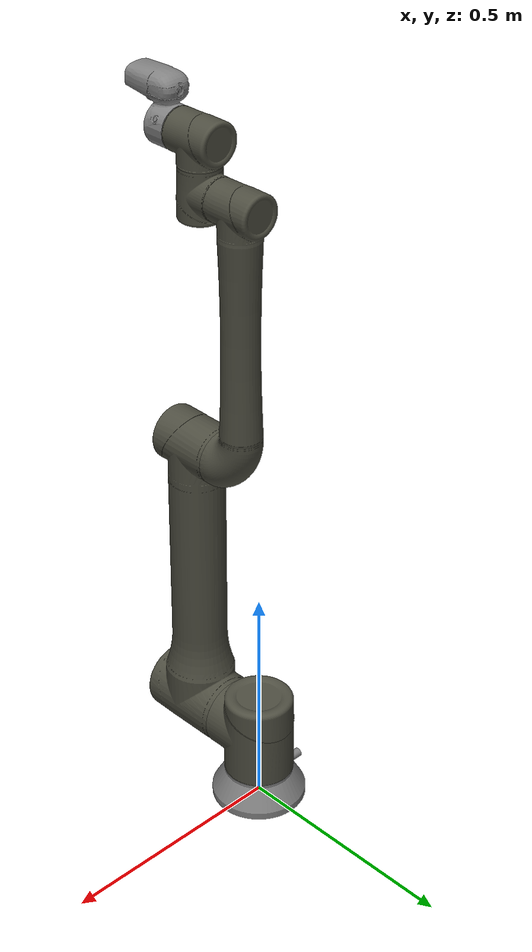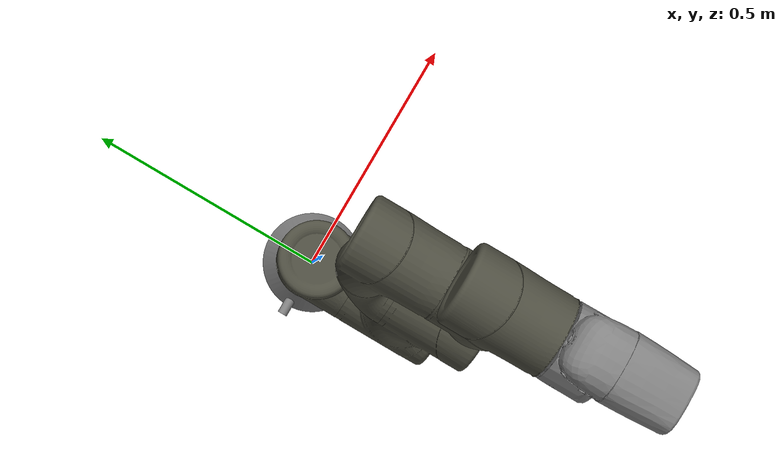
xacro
<?xml version="1.0"?>
<robot name="tm1300" xmlns:xacro="http://www.ros.org/wiki/xacro">

  <xacro:property name="prefix" value="" />

  <!-- gazebo stuff -->
  <xacro:include filename="$(find tm_description)/urdf/common.gazebo.xacro" />
  <xacro:include filename="$(find tm_description)/urdf/tm.gazebo.xacro" />
  <xacro:tm_arm_gazebo prefix="${prefix}" />

  <!-- tm1300 -->
  <xacro:include filename="$(find tm_description)/urdf/tm1300.urdf.xacro" />
  <xacro:tm1300_robot prefix="${prefix}" joint_limited="false" />

  <link name="world" />
  <joint name="world_joint" type="fixed">
    <parent link="world" />
    <child link="base" />
    <origin xyz="0 0 0" rpy="0 0 0" />
  </joint>

  <!-- eye in hand camera-->
  <xacro:include filename="$(find tm_description)/urdf/tm1300.eih.xacro" />
  <xacro:tm1300_eih_camera prefix="${prefix}" />

</robot>

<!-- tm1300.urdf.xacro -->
<robot xmlns:xacro="http://www.ros.org/wiki/xacro">

  <xacro:include filename="$(find tm_description)/urdf/tm.transmission.xacro" />

  <property name="pi" value="3.14159265" />

  <!-- Mass parameters-->
  <property name="base_mass" value="1.0" />
  <property name="shoulder_mass" value="4.5" />
  <property name="arm_1_mass" value="11.0" />
  <property name="arm_2_mass" value="2.5" />
  <property name="wrist_1_mass" value="1.45" />
  <property name="wrist_2_mass" value="1.45" />
  <property name="wrist_3_mass" value="0.4" />

  <!-- Kinematic model -->
  <!-- Properties from tmcontrol.conf -->
  <property name="tm_d1" value="0.1652" />
  <property name="tm_a2" value="0.6361" />
  <property name="tm_a3" value="0.5579" />
  <property name="tm_d4" value="0.1563" />
  <property name="tm_d5" value="0.1060" />
  <property name="tm_d6" value="0.11315" />

  <!-- offsets for shoulder/elbow joints -->
  <property name="shoulder_offset" value="-0.1801" />  <!-- measured from model -->
  <property name="elbow_offset" value="0.1298" /> <!-- measured from model -->
  <property name="wrist_offset" value="${-tm_d4 - elbow_offset - shoulder_offset}" />

  <!-- link lengths used in model -->
  <property name="shoulder_height" value="${tm_d1}" />
  <property name="arm_1_length" value="${tm_a2}" />
  <property name="arm_2_length" value="${tm_a3}" />
  <property name="wrist_1_length" value="tm_d5}" />
  <property name="wrist_2_length" value="${tm_d5}" />
  <property name="wrist_3_length" value="0.05525" />
  <property name="ee_length" value="${tm_d6 - wrist_3_length}" />

  <xacro:macro name="cylinder_inertial" params="radius length mass *origin">
    <inertial>
      <mass value="${mass}" />
      <insert_block name="origin" />
      <inertia ixx="${0.0833333 * mass * (3 * radius * radius + length * length)}" ixy="0.0" ixz="0.0"
        iyy="${0.0833333 * mass * (3 * radius * radius + length * length)}" iyz="0.0"
        izz="${0.5 * mass * radius * radius}" />
    </inertial>
  </xacro:macro>

  <xacro:macro name="tm1300_robot" params="prefix joint_limited">

    <!-- transmission prefix -->
    <xacro:tm_arm_transmission prefix="${prefix}" />

    <link name="${prefix}base_link" >
      <visual>
        <geometry>
	  <mesh filename="package://tm_description/meshes/tm1300/visual/Base.dae" />
        </geometry>
        <material name="Grey">
          <color rgba="0.5 0.5 0.5 1.0"/>
        </material>
      </visual>
      <collision>
        <geometry>
	  <mesh filename="package://tm_description/meshes/tm1300/collision/base.STL" />
        </geometry>
      </collision>

      <xacro:cylinder_inertial radius="0.06" length="0.05" mass="${base_mass}">
        <origin xyz="0.0 0.0 0.0" rpy="0 0 0" />
      </xacro:cylinder_inertial>

    </link>

    <link name="${prefix}shoulder_1_link">
      <visual>
        <geometry>
	  <mesh filename="package://tm_description/meshes/tm1300/visual/Shoulder1.dae" />
        </geometry>
        <material name="DarkOlive">
          <color rgba="0.3 0.3 0.25 1.0"/>
        </material>
      </visual>
      <collision>
        <geometry>
	  <mesh filename="package://tm_description/meshes/tm1300/collision/shoulder_1.STL" />
        </geometry>
      </collision>

      <xacro:cylinder_inertial radius="0.06" length="0.15" mass="${shoulder_mass}">
        <origin xyz="0.0 0.0 0.0" rpy="0 0 0" />
      </xacro:cylinder_inertial>

    </link>

    <joint name="${prefix}shoulder_1_joint" type="revolute">
      <parent link="${prefix}base_link" />
      <child link = "${prefix}shoulder_1_link" />
      <origin xyz="0.0 0.0 ${shoulder_height}" rpy="${-0.5 * pi} 0.0 0.0" />
      <axis xyz="0 -1 0" />
      <xacro:unless value="${joint_limited}">
        <limit lower="${-2.0 * pi}" upper="${2.0 * pi}" effort="150.0" velocity="3.15"/>
      </xacro:unless>
      <xacro:if value="${joint_limited}">
        <limit lower="${-pi}" upper="${pi}" effort="150.0" velocity="3.15"/>
      </xacro:if>
      <dynamics damping="0.0" friction="0.0"/>
    </joint>

    <link name="${prefix}arm_1_link">
      <visual>
        <geometry>
	  <mesh filename="package://tm_description/meshes/tm1300/visual/Arm1.dae" />
        </geometry>
        <material name="DarkOlive">
          <color rgba="0.3 0.3 0.25 1.0"/>
        </material>
      </visual>
      <collision>
        <geometry>
	  <mesh filename="package://tm_description/meshes/tm1300/collision/arm_1.STL" />
        </geometry>
      </collision>

      <xacro:cylinder_inertial radius="0.06" length="0.56" mass="${arm_1_mass}">
        <origin xyz="0.0 0.0 0.28" rpy="0 0 0" />
      </xacro:cylinder_inertial>

    </link>

    <joint name="${prefix}shoulder_2_joint" type="revolute">
      <parent link="${prefix}shoulder_1_link" />
      <child link = "${prefix}arm_1_link" />
      <origin xyz="0.0 0.0 ${shoulder_offset}" rpy="0.0 0.0 ${-0.5 * pi}" />
      <axis xyz="0 0 1" />
      <xacro:unless value="${joint_limited}">
        <limit lower="${-1.5 * pi}" upper="${1.5 * pi}" effort="150.0" velocity="3.15"/>
      </xacro:unless>
      <xacro:if value="${joint_limited}">
        <limit lower="${-pi}" upper="${pi}" effort="150.0" velocity="3.15"/>
      </xacro:if>
      <dynamics damping="0.0" friction="0.0"/>
    </joint>

    <link name="${prefix}arm_2_link">
      <visual>
        <geometry>
	  <mesh filename="package://tm_description/meshes/tm1300/visual/Arm2.dae" />
        </geometry>
        <material name="DarkOlive">
          <color rgba="0.3 0.3 0.25 1.0"/>
        </material>
      </visual>

      <collision>
        <geometry>
	  <mesh filename="package://tm_description/meshes/tm1300/collision/arm_2.STL" />
        </geometry>
      </collision>

      <xacro:cylinder_inertial radius="0.06" length="0.5" mass="${arm_2_mass}">
        <origin xyz="0.0 0.0 0.25" rpy="0 0 0" />
      </xacro:cylinder_inertial>

    </link>

    <joint name="${prefix}elbow_1_joint" type="revolute">
      <parent link="${prefix}arm_1_link" />
      <child link = "${prefix}arm_2_link" />
      <origin xyz="${arm_1_length} 0.0 ${elbow_offset}" rpy="0.0 0.0 0.0" />
      <axis xyz="0 0 1" />
      <xacro:unless value="${joint_limited}">
        <limit lower="${-1.5 * pi}" upper="${1.5 * pi}" effort="150.0" velocity="3.15"/>
      </xacro:unless>
      <xacro:if value="${joint_limited}">
        <limit lower="${-pi}" upper="${pi}" effort="150.0" velocity="3.15"/>
      </xacro:if>
      <dynamics damping="0.0" friction="0.0"/>
    </joint>

    <link name="${prefix}wrist_1_link">
      <visual>
        <geometry>
	  <mesh filename="package://tm_description/meshes/tm1300/visual/Wrist1.dae" />
        </geometry>
        <material name="DarkOlive">
          <color rgba="0.3 0.3 0.25 1.0"/>
        </material>
      </visual>
      <collision>
        <geometry>
	  <mesh filename="package://tm_description/meshes/tm1300/collision/wrist_1.STL" />
        </geometry>
      </collision>

      <xacro:cylinder_inertial radius="0.6" length="0.12" mass="${wrist_1_mass}">
        <origin xyz="0.0 0.0 0.0" rpy="0 0 0" />
      </xacro:cylinder_inertial>

    </link>

    <joint name="${prefix}wrist_1_joint" type="revolute">
      <parent link="${prefix}arm_2_link" />
      <child link = "${prefix}wrist_1_link" />
      <origin xyz="${arm_2_length} 0.0 ${wrist_offset}" rpy="${0.5 * pi} 0.0 ${0.5 * pi}" />
      <axis xyz="0 1 0" />
      <xacro:unless value="${joint_limited}">
        <limit lower="${-2.0 * pi}" upper="${2.0 * pi}" effort="28.0" velocity="3.2"/>
      </xacro:unless>
      <xacro:if value="${joint_limited}">
        <limit lower="${-pi}" upper="${pi}" effort="28.0" velocity="3.2"/>
      </xacro:if>
      <dynamics damping="0.0" friction="0.0"/>
    </joint>

    <link name="${prefix}wrist_2_link">
      <visual>
        <geometry>
	  <mesh filename="package://tm_description/meshes/tm1300/visual/Wrist2.dae" />
        </geometry>
        <material name="DarkOlive">
          <color rgba="0.3 0.3 0.25 1.0"/>
        </material>
      </visual>
      <collision>
        <geometry>
	  <mesh filename="package://tm_description/meshes/tm1300/collision/wrist_2.STL" />
        </geometry>
      </collision>

      <xacro:cylinder_inertial radius="0.6" length="0.12" mass="${wrist_2_mass}">
        <origin xyz="0.0 0.0 0.0" rpy="0 0 0" />
      </xacro:cylinder_inertial>

    </link>

    <joint name="${prefix}wrist_2_joint" type="revolute">
      <parent link="${prefix}wrist_1_link" />
      <child link = "${prefix}wrist_2_link" />
      <origin xyz="0.0 0.0 ${wrist_2_length}" rpy="${0.5 * pi} 0.0 0.0" />
      <axis xyz="0 1 0" />
      <xacro:unless value="${joint_limited}">
        <limit lower="${-2.0 * pi}" upper="${2.0 * pi}" effort="28.0" velocity="3.2"/>
      </xacro:unless>
      <xacro:if value="${joint_limited}">
        <limit lower="${-pi}" upper="${pi}" effort="28.0" velocity="3.2"/>
      </xacro:if>
      <dynamics damping="0.0" friction="0.0"/>
    </joint>

    <link name="${prefix}wrist_3_link">
      <visual>
        <geometry>
	  <mesh filename="package://tm_description/meshes/tm1300/visual/Wrist3.dae" />
        </geometry>
	<origin xyz="0 0 0.015" rpy="0 0 0"/>
        <material name="Grey">
          <color rgba="0.5 0.5 0.5 1.0"/>
        </material>
      </visual>
      <collision>
        <geometry>
	  <mesh filename="package://tm_description/meshes/tm1300/collision/wrist_3.STL" />
        </geometry>
      </collision>

      <xacro:cylinder_inertial radius="0.6" length="0.12" mass="${wrist_3_mass}">
        <origin xyz="0.0 0.0 0.0" rpy="0 0 0" />
      </xacro:cylinder_inertial>

    </link>

    <joint name="${prefix}wrist_3_joint" type="revolute">
      <parent link="${prefix}wrist_2_link" />
      <child link = "${prefix}wrist_3_link" />
      <origin xyz="0.0 0.0 ${wrist_3_length}" rpy="0.0 0.0 0.0" />
      <axis xyz="0 0 1" />
      <xacro:unless value="${joint_limited}">
        <limit lower="${-2.0 * pi}" upper="${2.0 * pi}" effort="28.0" velocity="3.2"/>
      </xacro:unless>
      <xacro:if value="${joint_limited}">
        <limit lower="${-pi}" upper="${pi}" effort="28.0" velocity="3.2"/>
      </xacro:if>
      <dynamics damping="0.0" friction="0.0"/>
    </joint>

    <link name="${prefix}tip_link">
      <collision>
        <geometry>
          <box size="0.05 0.05 0.05"/>
        </geometry>
        <origin xyz="0 0 0.025" rpy="0 0 0"/>
      </collision>
    </link>

    <joint name="${prefix}tip_fixed_joint" type="fixed">
      <parent link="${prefix}wrist_3_link" />
      <child link = "${prefix}tip_link" />
      <origin xyz="0.0 0.0 ${ee_length}" rpy="0.0 0.0 0.0" />
    </joint>

    <!-- ROS base to TM 'base_link' Coordinates transform -->
    <link name="${prefix}base"/>
    <joint name="${prefix}base-base_link" type="fixed">
      <origin xyz="0 0 0" rpy="0 0 0"/>
      <parent link="${prefix}base"/>
      <child link="${prefix}base_link"/>
    </joint>

    <!-- Frame coincident with all-zeros TCP on TM controller -->
    <link name="${prefix}tool0"/>
    <joint name="${prefix}tip_link-tool0" type="fixed">
      <parent link="${prefix}tip_link"/>
      <child link="${prefix}tool0"/>
      <origin xyz="0 0 0" rpy="0 0 0"/>
    </joint>

  </xacro:macro>
</robot>

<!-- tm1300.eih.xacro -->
<robot xmlns:xacro="http://www.ros.org/wiki/xacro">
  <xacro:macro name="tm1300_eih_camera" params="prefix">

    <gazebo reference="${prefix}eye_in_hand_camera_rgb_frame">
      <sensor type="camera" name="${prefix}eye_in_hand_camera">
        <update_rate>15.0</update_rate>
        <camera name="${prefix}hand_camera">
          <horizontal_fov>1.3962634</horizontal_fov>
          <image>
            <width>640</width>
            <height>480</height>
            <format>R8G8B8</format>
          </image>
          <clip>
            <near>0.02</near>
            <far>300</far>
          </clip>
          <noise>
            <type>gaussian</type>
            <mean>0.0</mean>
            <stddev>0.007</stddev>
          </noise>
        </camera>
        <plugin name="camera_controller" filename="libgazebo_ros_camera.so">
          <alwaysOn>true</alwaysOn>
          <updateRate>15.0</updateRate>
          <cameraName>${prefix}eye_in_hand_camera</cameraName>
          <imageTopicName>image_raw</imageTopicName>
          <cameraInfoTopicName>camera_info</cameraInfoTopicName>
          <frameName>${prefix}eye_in_hand_camera_rgb_frame</frameName>
          <hackBaseline>0.07</hackBaseline>
          <distortionK1>0.0</distortionK1>
          <distortionK2>0.0</distortionK2>
          <distortionK3>0.0</distortionK3>
          <distortionT1>0.0</distortionT1>
          <distortionT2>0.0</distortionT2>
        </plugin>
      </sensor>
    </gazebo>

    <link name="${prefix}eye_in_hand_camera_link" />
    <joint name="${prefix}eye_in_hand_camera_joint" type="fixed">
      <parent link="${prefix}tip_link" />
      <child link="${prefix}eye_in_hand_camera_link" />
      <origin xyz="0 0.08 0.0421" rpy="0 0 0" />
    </joint>

    <link name="${prefix}eye_in_hand_camera_rgb_frame" />
    <joint name="${prefix}eye_in_hand_camera_rgb_joint" type="fixed">
      <parent link="${prefix}eye_in_hand_camera_link" />
      <child link="${prefix}eye_in_hand_camera_rgb_frame" />
      <origin xyz="0 0 0" rpy="-1.57079632679 -1.57079632679 0" />
    </joint>

  </xacro:macro>
</robot>
